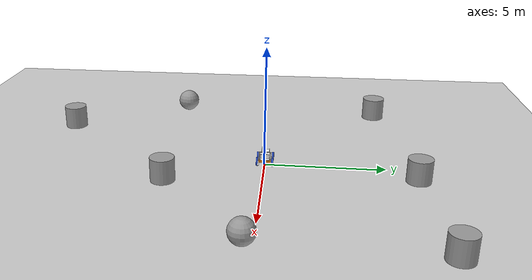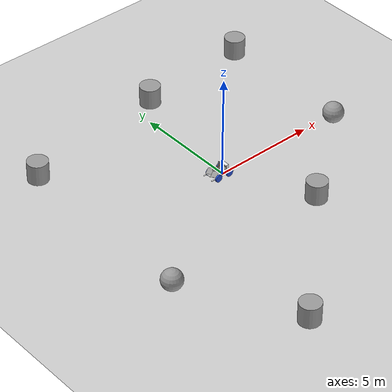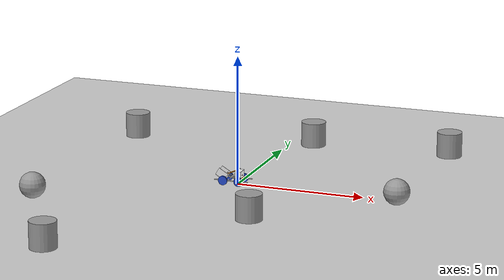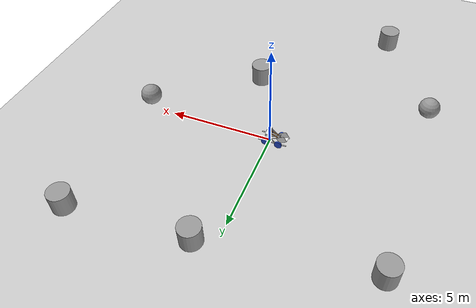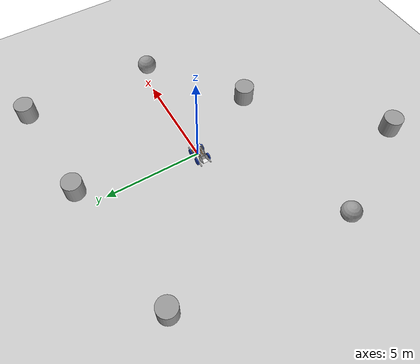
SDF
<sdf version="1.7">
 <world name="default">
  <light name="sun" type="directional">
   <pose>0 0 10 0 -0 0</pose>
   <diffuse>0.8 0.8 0.8 1</diffuse>
   <specular>0.2 0.2 0.2 1</specular>
   <attenuation>
    <range>1000</range>
    <constant>0.9</constant>
    <linear>0.01</linear>
    <quadratic>0.001</quadratic>
   </attenuation>
   <direction>-0.5 0.1 -0.9</direction>
   <spot><inner_angle>0</inner_angle><outer_angle>0</outer_angle><falloff>0</falloff></spot>
  </light>
  <model name="ground_plane">
   <static>1</static>
   <link name="link">
    <collision name="collision">
     <geometry><plane><normal>0 0 1</normal><size>100 100</size></plane></geometry>
     <surface><friction><ode><mu>100</mu><mu2>50</mu2></ode></friction></surface>
    </collision>
    <visual name="visual">
     <cast_shadows>0</cast_shadows>
     <geometry><plane><normal>0 0 1</normal><size>100 100</size></plane></geometry>
     <material>
      <script><uri>file://media/materials/scripts/gazebo.material</uri><name>Gazebo/Grey</name></script>
     </material>
    </visual>
   </link>
  </model>
  <gravity>0 0 -9.8</gravity>
  <magnetic_field>6e-06 2.3e-05 -4.2e-05</magnetic_field>
  <atmosphere type="adiabatic"/>
  <physics type="ode">
   <max_step_size>0.001</max_step_size>
   <real_time_factor>1</real_time_factor>
   <real_time_update_rate>1000</real_time_update_rate>
  </physics>
  <scene><ambient>0.4 0.4 0.4 1</ambient><background>0.7 0.7 0.7 1</background><shadows>1</shadows></scene>
  <audio><device>default</device></audio>
  <spherical_coordinates>
   <surface_model>EARTH_WGS84</surface_model>
   <latitude_deg>0</latitude_deg>
   <longitude_deg>0</longitude_deg>
   <elevation>0</elevation>
   <heading_deg>0</heading_deg>
  </spherical_coordinates>
  <model name="my_bot">
   <link name="base_link">
    <inertial>
     <pose>-0.101859 -0 0.097346 0 -0 0</pose>
     <mass>691.326</mass>
     <inertia>
      <ixx>36.6422</ixx>
      <ixy>3.61875e-16</ixy>
      <ixz>7.87327</ixz>
      <iyy>202.022</iyy>
      <iyz>-2.34819e-16</iyz>
      <izz>218.628</izz>
     </inertia>
    </inertial>
    <collision name="base_link_fixed_joint_lump__doser_back_collision">
     <pose>-0.4205 0 0.095 0 0.540722 0</pose>
     <geometry><box><size>0.005 0.3225 0.312</size></box></geometry>
    </collision>
    <collision name="base_link_fixed_joint_lump__doser_base_collision_1">
     <pose>-0.675 0 0.066 0 0.540722 0</pose>
     <geometry><box><size>0.4153 0.3225 0.005</size></box></geometry>
    </collision>
    <collision name="base_link_fixed_joint_lump__doser_left_collision_2">
     <pose>-0.597 -0.158753 0.2 0 0.540722 0</pose>
     <geometry><box><size>0.4153 0.005 0.307</size></box></geometry>
    </collision>
    <collision name="base_link_fixed_joint_lump__doser_right_collision_3">
     <pose>-0.597 0.158753 0.2 0 0.540722 0</pose>
     <geometry><box><size>0.4153 0.005 0.307</size></box></geometry>
    </collision>
    <collision name="base_link_fixed_joint_lump__actuator_left_collision_4">
     <pose>-0.205 -0.076025 0.285 0 -0.418879 0</pose>
     <geometry><box><size>0.4575 0.02 0.02</size></box></geometry>
    </collision>
    <collision name="base_link_fixed_joint_lump__actuator_right_collision_5">
     <pose>-0.205 0.076025 0.285 0 -0.418879 0</pose>
     <geometry><box><size>0.4575 0.02 0.02</size></box></geometry>
    </collision>
    <collision name="base_link_fixed_joint_lump__back_left_wheel_collision_6">
     <pose>-0.49 -0.3182 0 -1.5708 0 0</pose>
     <geometry><sphere><radius>0.1778</radius></sphere></geometry>
     <surface><friction><ode><mu>0.001</mu><mu2>0.001</mu2></ode></friction></surface>
    </collision>
    <collision name="base_link_fixed_joint_lump__back_right_wheel_collision_7">
     <pose>-0.49 0.3182 0 1.5708 -0 0</pose>
     <geometry><sphere><radius>0.1778</radius></sphere></geometry>
     <surface><friction><ode><mu>0.001</mu><mu2>0.001</mu2></ode></friction></surface>
    </collision>
    <collision name="base_link_fixed_joint_lump__chassis_base_left_collision_8">
     <pose>-0.17965 -0.2604 0 0 -0 0</pose>
     <geometry><box><size>1.3501 0.0508 0.0254</size></box></geometry>
    </collision>
    <collision name="base_link_fixed_joint_lump__chassis_base_right_collision_9">
     <pose>-0.17965 0.2604 0 0 -0 0</pose>
     <geometry><box><size>1.3501 0.0508 0.0254</size></box></geometry>
    </collision>
    <collision name="base_link_fixed_joint_lump__doser_profile_left_collision_10">
     <pose>-0.2286 -0.076025 0.1 0 0.418879 0</pose>
     <geometry><box><size>0.49 0.0254 0.0254</size></box></geometry>
    </collision>
    <collision name="base_link_fixed_joint_lump__doser_profile_right_collision_11">
     <pose>-0.2286 0.076025 0.1 0 0.418879 0</pose>
     <geometry><box><size>0.49 0.0254 0.0254</size></box></geometry>
    </collision>
    <collision name="base_link_fixed_joint_lump__doser_profile_top_collision_12">
     <pose>-0.4596 0 0.20245 0 0.418879 0</pose>
     <geometry><box><size>0.0254 0.3075 0.0254</size></box></geometry>
    </collision>
    <collision name="base_link_fixed_joint_lump__elec_back_collision_13">
     <pose>0.0135 0 0.23095 0 -0 0</pose>
     <geometry><box><size>0.009 0.3988 0.28</size></box></geometry>
    </collision>
    <collision name="base_link_fixed_joint_lump__elec_base_collision_14">
     <pose>0.10045 0 0.1 0 -0 0</pose>
     <geometry><box><size>0.1829 0.3988 0.019</size></box></geometry>
    </collision>
    <collision name="base_link_fixed_joint_lump__elec_left_collision_15">
     <pose>0.10045 -0.1995 0.23095 0 -0 0</pose>
     <geometry><box><size>0.1829 0.009 0.28</size></box></geometry>
    </collision>
    <collision name="base_link_fixed_joint_lump__elec_right_collision_16">
     <pose>0.10045 0.1995 0.23095 0 -0 0</pose>
     <geometry><box><size>0.1829 0.009 0.28</size></box></geometry>
    </collision>
    <collision name="base_link_fixed_joint_lump__elec_top_collision_17">
     <pose>0.10045 0 0.3616 0 -0 0</pose>
     <geometry><box><size>0.1829 0.3988 0.019</size></box></geometry>
    </collision>
    <collision name="base_link_fixed_joint_lump__laser_frame_collision_18">
     <pose>0 0 0.5334 0 -0 0</pose>
     <geometry><cylinder><length>0.04</length><radius>0.05</radius></cylinder></geometry>
    </collision>
    <collision name="base_link_fixed_joint_lump__motor_base_back_collision_19">
     <pose>0.175 0 0 0 -0 0</pose>
     <geometry><box><size>0.0254 0.4702 0.0254</size></box></geometry>
    </collision>
    <collision name="base_link_fixed_joint_lump__motor_base_front_collision_20">
     <pose>0.1 0 0 0 -0 0</pose>
     <geometry><box><size>0.0254 0.4702 0.0254</size></box></geometry>
    </collision>
    <collision name="base_link_fixed_joint_lump__motor_collision_21">
     <pose>0.145 0 0.0375 0 -0 0</pose>
     <geometry><box><size>0.15 0.5 0.075</size></box></geometry>
    </collision>
    <collision name="base_link_fixed_joint_lump__tower_base_collision_22">
     <geometry><box><size>0.0254 0.4702 0.0254</size></box></geometry>
    </collision>
    <collision name="base_link_fixed_joint_lump__tower_middle_collision_23">
     <pose>0 0 0.08 0 -0 0</pose>
     <geometry><box><size>0.0254 0.4702 0.0254</size></box></geometry>
    </collision>
    <collision name="base_link_fixed_joint_lump__tower_support_left_collision_24">
     <pose>-0.15635 -0.2478 0.16 0 -0.785398 0</pose>
     <geometry><box><size>0.4572 0.0254 0.0254</size></box></geometry>
    </collision>
    <collision name="base_link_fixed_joint_lump__tower_support_right_collision_25">
     <pose>-0.15635 0.2478 0.16 0 -0.785398 0</pose>
     <geometry><box><size>0.4572 0.0254 0.0254</size></box></geometry>
    </collision>
    <collision name="base_link_fixed_joint_lump__tower_top_collision_26">
     <pose>0 0 0.3626 0 -0 0</pose>
     <geometry><box><size>0.0254 0.4702 0.0508</size></box></geometry>
    </collision>
    <collision name="base_link_fixed_joint_lump__tower_up_left_collision_27">
     <pose>0 -0.2478 0.194 0 -0 0</pose>
     <geometry><box><size>0.0254 0.0254 0.388</size></box></geometry>
    </collision>
    <collision name="base_link_fixed_joint_lump__tower_up_right_collision_28">
     <pose>0 0.2478 0.194 0 -0 0</pose>
     <geometry><box><size>0.0254 0.0254 0.388</size></box></geometry>
    </collision>
    <visual name="base_link_fixed_joint_lump__doser_back_visual">
     <pose>-0.4205 0 0.095 0 0.540722 0</pose>
     <geometry><box><size>0.005 0.3225 0.312</size></box></geometry>
     <material>
      <script><name>Gazebo/White</name><uri>file://media/materials/scripts/gazebo.material</uri></script>
     </material>
    </visual>
    <visual name="base_link_fixed_joint_lump__doser_base_visual_1">
     <pose>-0.675 0 0.066 0 0.540722 0</pose>
     <geometry><box><size>0.4153 0.3225 0.005</size></box></geometry>
     <material>
      <script><name>Gazebo/White</name><uri>file://media/materials/scripts/gazebo.material</uri></script>
     </material>
    </visual>
    <visual name="base_link_fixed_joint_lump__doser_left_visual_2">
     <pose>-0.597 -0.158753 0.2 0 0.540722 0</pose>
     <geometry><box><size>0.4153 0.005 0.307</size></box></geometry>
     <material>
      <script><name>Gazebo/White</name><uri>file://media/materials/scripts/gazebo.material</uri></script>
     </material>
    </visual>
    <visual name="base_link_fixed_joint_lump__doser_right_visual_3">
     <pose>-0.597 0.158753 0.2 0 0.540722 0</pose>
     <geometry><box><size>0.4153 0.005 0.307</size></box></geometry>
     <material>
      <script><name>Gazebo/White</name><uri>file://media/materials/scripts/gazebo.material</uri></script>
     </material>
    </visual>
    <visual name="base_link_fixed_joint_lump__actuator_left_visual_4">
     <pose>-0.205 -0.076025 0.285 0 -0.418879 0</pose>
     <geometry><box><size>0.4575 0.02 0.02</size></box></geometry>
     <material>
      <script><name>Gazebo/Orange</name><uri>file://media/materials/scripts/gazebo.material</uri></script>
     </material>
    </visual>
    <visual name="base_link_fixed_joint_lump__actuator_right_visual_5">
     <pose>-0.205 0.076025 0.285 0 -0.418879 0</pose>
     <geometry><box><size>0.4575 0.02 0.02</size></box></geometry>
     <material>
      <script><name>Gazebo/Orange</name><uri>file://media/materials/scripts/gazebo.material</uri></script>
     </material>
    </visual>
    <visual name="base_link_fixed_joint_lump__back_left_wheel_visual_6">
     <pose>-0.49 -0.3182 0 -1.5708 0 0</pose>
     <geometry><cylinder><length>0.07</length><radius>0.1778</radius></cylinder></geometry>
     <material>
      <script><name>Gazebo/Blue</name><uri>file://media/materials/scripts/gazebo.material</uri></script>
     </material>
    </visual>
    <visual name="base_link_fixed_joint_lump__back_right_wheel_visual_7">
     <pose>-0.49 0.3182 0 1.5708 -0 0</pose>
     <geometry><cylinder><length>0.07</length><radius>0.1778</radius></cylinder></geometry>
     <material>
      <script><name>Gazebo/Blue</name><uri>file://media/materials/scripts/gazebo.material</uri></script>
     </material>
    </visual>
    <visual name="base_link_fixed_joint_lump__camera_link_visual_8">
     <pose>0.1919 0 0.2016 0 -0 0</pose>
     <geometry><box><size>0.01 0.03 0.03</size></box></geometry>
     <material>
      <script><name>Gazebo/Red</name><uri>file://media/materials/scripts/gazebo.material</uri></script>
     </material>
    </visual>
    <visual name="base_link_fixed_joint_lump__chassis_base_left_visual_9">
     <pose>-0.17965 -0.2604 0 0 -0 0</pose>
     <geometry><box><size>1.3501 0.0508 0.0254</size></box></geometry>
     <material>
      <script><name>Gazebo/White</name><uri>file://media/materials/scripts/gazebo.material</uri></script>
     </material>
    </visual>
    <visual name="base_link_fixed_joint_lump__chassis_base_right_visual_10">
     <pose>-0.17965 0.2604 0 0 -0 0</pose>
     <geometry><box><size>1.3501 0.0508 0.0254</size></box></geometry>
     <material>
      <script><name>Gazebo/White</name><uri>file://media/materials/scripts/gazebo.material</uri></script>
     </material>
    </visual>
    <visual name="base_link_fixed_joint_lump__doser_profile_left_visual_11">
     <pose>-0.2286 -0.076025 0.1 0 0.418879 0</pose>
     <geometry><box><size>0.49 0.0254 0.0254</size></box></geometry>
     <material>
      <script><name>Gazebo/White</name><uri>file://media/materials/scripts/gazebo.material</uri></script>
     </material>
    </visual>
    <visual name="base_link_fixed_joint_lump__doser_profile_right_visual_12">
     <pose>-0.2286 0.076025 0.1 0 0.418879 0</pose>
     <geometry><box><size>0.49 0.0254 0.0254</size></box></geometry>
     <material>
      <script><name>Gazebo/White</name><uri>file://media/materials/scripts/gazebo.material</uri></script>
     </material>
    </visual>
    <visual name="base_link_fixed_joint_lump__doser_profile_top_visual_13">
     <pose>-0.4596 0 0.20245 0 0.418879 0</pose>
     <geometry><box><size>0.0254 0.3075 0.0254</size></box></geometry>
     <material>
      <script><name>Gazebo/White</name><uri>file://media/materials/scripts/gazebo.material</uri></script>
     </material>
    </visual>
    <visual name="base_link_fixed_joint_lump__elec_back_visual_14">
     <pose>0.0135 0 0.23095 0 -0 0</pose>
     <geometry><box><size>0.009 0.3988 0.28</size></box></geometry>
     <material>
      <script><name>Gazebo/White</name><uri>file://media/materials/scripts/gazebo.material</uri></script>
     </material>
    </visual>
    <visual name="base_link_fixed_joint_lump__elec_base_visual_15">
     <pose>0.10045 0 0.1 0 -0 0</pose>
     <geometry><box><size>0.1829 0.3988 0.019</size></box></geometry>
     <material>
      <script><name>Gazebo/White</name><uri>file://media/materials/scripts/gazebo.material</uri></script>
     </material>
    </visual>
    <visual name="base_link_fixed_joint_lump__elec_left_visual_16">
     <pose>0.10045 -0.1995 0.23095 0 -0 0</pose>
     <geometry><box><size>0.1829 0.009 0.28</size></box></geometry>
     <material>
      <script><name>Gazebo/White</name><uri>file://media/materials/scripts/gazebo.material</uri></script>
     </material>
    </visual>
    <visual name="base_link_fixed_joint_lump__elec_right_visual_17">
     <pose>0.10045 0.1995 0.23095 0 -0 0</pose>
     <geometry><box><size>0.1829 0.009 0.28</size></box></geometry>
     <material>
      <script><name>Gazebo/White</name><uri>file://media/materials/scripts/gazebo.material</uri></script>
     </material>
    </visual>
    <visual name="base_link_fixed_joint_lump__elec_top_visual_18">
     <pose>0.10045 0 0.3616 0 -0 0</pose>
     <geometry><box><size>0.1829 0.3988 0.019</size></box></geometry>
     <material>
      <script><name>Gazebo/White</name><uri>file://media/materials/scripts/gazebo.material</uri></script>
     </material>
    </visual>
    <visual name="base_link_fixed_joint_lump__laser_frame_visual_19">
     <pose>0 0 0.5334 0 -0 0</pose>
     <geometry><cylinder><length>0.04</length><radius>0.05</radius></cylinder></geometry>
     <material>
      <script><name>Gazebo/Red</name><uri>file://media/materials/scripts/gazebo.material</uri></script>
     </material>
    </visual>
    <visual name="base_link_fixed_joint_lump__motor_base_back_visual_20">
     <pose>0.175 0 0 0 -0 0</pose>
     <geometry><box><size>0.0254 0.4702 0.0254</size></box></geometry>
     <material>
      <script><name>Gazebo/White</name><uri>file://media/materials/scripts/gazebo.material</uri></script>
     </material>
    </visual>
    <visual name="base_link_fixed_joint_lump__motor_base_front_visual_21">
     <pose>0.1 0 0 0 -0 0</pose>
     <geometry><box><size>0.0254 0.4702 0.0254</size></box></geometry>
     <material>
      <script><name>Gazebo/White</name><uri>file://media/materials/scripts/gazebo.material</uri></script>
     </material>
    </visual>
    <visual name="base_link_fixed_joint_lump__motor_visual_22">
     <pose>0.145 0 0.0375 0 -0 0</pose>
     <geometry><box><size>0.15 0.5 0.075</size></box></geometry>
     <material>
      <script><name>Gazebo/Orange</name><uri>file://media/materials/scripts/gazebo.material</uri></script>
     </material>
    </visual>
    <visual name="base_link_fixed_joint_lump__tower_base_visual_23">
     <geometry><box><size>0.0254 0.4702 0.0254</size></box></geometry>
     <material>
      <script><name>Gazebo/White</name><uri>file://media/materials/scripts/gazebo.material</uri></script>
     </material>
    </visual>
    <visual name="base_link_fixed_joint_lump__tower_middle_visual_24">
     <pose>0 0 0.08 0 -0 0</pose>
     <geometry><box><size>0.0254 0.4702 0.0254</size></box></geometry>
     <material>
      <script><name>Gazebo/White</name><uri>file://media/materials/scripts/gazebo.material</uri></script>
     </material>
    </visual>
    <visual name="base_link_fixed_joint_lump__tower_support_left_visual_25">
     <pose>-0.15635 -0.2478 0.16 0 -0.785398 0</pose>
     <geometry><box><size>0.4572 0.0254 0.0254</size></box></geometry>
     <material>
      <script><name>Gazebo/White</name><uri>file://media/materials/scripts/gazebo.material</uri></script>
     </material>
    </visual>
    <visual name="base_link_fixed_joint_lump__tower_support_right_visual_26">
     <pose>-0.15635 0.2478 0.16 0 -0.785398 0</pose>
     <geometry><box><size>0.4572 0.0254 0.0254</size></box></geometry>
     <material>
      <script><name>Gazebo/White</name><uri>file://media/materials/scripts/gazebo.material</uri></script>
     </material>
    </visual>
    <visual name="base_link_fixed_joint_lump__tower_top_visual_27">
     <pose>0 0 0.3626 0 -0 0</pose>
     <geometry><box><size>0.0254 0.4702 0.0508</size></box></geometry>
    </visual>
    <visual name="base_link_fixed_joint_lump__tower_up_left_visual_28">
     <pose>0 -0.2478 0.194 0 -0 0</pose>
     <geometry><box><size>0.0254 0.0254 0.388</size></box></geometry>
     <material>
      <script><name>Gazebo/White</name><uri>file://media/materials/scripts/gazebo.material</uri></script>
     </material>
    </visual>
    <visual name="base_link_fixed_joint_lump__tower_up_right_visual_29">
     <pose>0 0.2478 0.194 0 -0 0</pose>
     <geometry><box><size>0.0254 0.0254 0.388</size></box></geometry>
     <material>
      <script><name>Gazebo/White</name><uri>file://media/materials/scripts/gazebo.material</uri></script>
     </material>
    </visual>
    <sensor name="depth_camera" type="depth">
     <visualize>1</visualize>
     <update_rate>10</update_rate>
     <camera>
      <horizontal_fov>1.089</horizontal_fov>
      <image><format>B8G8R8</format><width>640</width><height>480</height></image>
      <clip><near>0.05</near><far>8</far></clip>
     </camera>
     <plugin name="camera_controller" filename="libgazebo_ros_camera.so">
      <frame_name>camera_link_optical</frame_name>
      <min_depth>0.1</min_depth>
      <max_depth>100</max_depth>
     </plugin>
     <pose>0.1919 0 0.2016 0 -0 0</pose>
    </sensor>
    <sensor name="imu_sensor" type="imu">
     <always_on>1</always_on>
     <update_rate>100</update_rate>
     <visualize>1</visualize>
     <plugin name="imu_plugin" filename="libgazebo_ros_imu_sensor.so">
      <ros><remapping>~/out:=imu/data_raw</remapping></ros>
      <topicName>imu</topicName>
      <bodyName>imu_link</bodyName>
      <update_rate>100</update_rate>
      <frameName>imu_link</frameName>
      <initialOrientationAsReference>0</initialOrientationAsReference>
     </plugin>
    </sensor>
    <sensor name="laser" type="ray">
     <visualize>1</visualize>
     <update_rate>10</update_rate>
     <ray>
      <scan>
       <horizontal>
        <samples>360</samples>
        <min_angle>-3.14</min_angle>
        <max_angle>3.14</max_angle>
        <resolution>1</resolution>
       </horizontal>
       <vertical><samples>1</samples><min_angle>0</min_angle><max_angle>0</max_angle></vertical>
      </scan>
      <range><min>0.3</min><max>12</max></range>
     </ray>
     <plugin name="laser_controller" filename="libgazebo_ros_ray_sensor.so">
      <ros><argument>~/out:=scan</argument></ros>
      <output_type>sensor_msgs/LaserScan</output_type>
      <frame_name>laser_frame</frame_name>
     </plugin>
     <pose>0 0 0.5334 0 -0 0</pose>
    </sensor>
   </link>
   <joint name="left_wheel_joint" type="revolute">
    <pose relative_to="base_link">0.14 0.3182 0 -1.5708 0 0</pose>
    <parent>base_link</parent>
    <child>left_wheel</child>
    <axis>
     <xyz>0 0 1</xyz>
     <limit><lower>-1e+16</lower><upper>1e+16</upper></limit>
     <dynamics><spring_reference>0</spring_reference><spring_stiffness>0</spring_stiffness></dynamics>
    </axis>
   </joint>
   <link name="left_wheel">
    <pose relative_to="left_wheel_joint">0 0 0 0 -0 0</pose>
    <inertial>
     <mass>56</mass>
     <inertia>
      <ixx>0.465446</ixx>
      <ixy>0</ixy>
      <ixz>0</ixz>
      <iyy>0.465446</iyy>
      <iyz>0</iyz>
      <izz>0.88516</izz>
     </inertia>
    </inertial>
    <collision name="left_wheel_collision">
     <geometry><sphere><radius>0.1778</radius></sphere></geometry>
    </collision>
    <visual name="left_wheel_visual">
     <geometry><cylinder><length>0.07</length><radius>0.1778</radius></cylinder></geometry>
     <material>
      <script><name>Gazebo/Blue</name><uri>file://media/materials/scripts/gazebo.material</uri></script>
     </material>
    </visual>
   </link>
   <joint name="right_wheel_joint" type="revolute">
    <pose relative_to="base_link">0.14 -0.3182 0 1.5708 -0 0</pose>
    <parent>base_link</parent>
    <child>right_wheel</child>
    <axis>
     <xyz>0 0 -1</xyz>
     <limit><lower>-1e+16</lower><upper>1e+16</upper></limit>
     <dynamics><spring_reference>0</spring_reference><spring_stiffness>0</spring_stiffness></dynamics>
    </axis>
   </joint>
   <link name="right_wheel">
    <pose relative_to="right_wheel_joint">0 0 0 0 -0 0</pose>
    <inertial>
     <mass>56</mass>
     <inertia>
      <ixx>0.465446</ixx>
      <ixy>0</ixy>
      <ixz>0</ixz>
      <iyy>0.465446</iyy>
      <iyz>0</iyz>
      <izz>0.88516</izz>
     </inertia>
    </inertial>
    <collision name="right_wheel_collision">
     <geometry><sphere><radius>0.1778</radius></sphere></geometry>
    </collision>
    <visual name="right_wheel_visual">
     <geometry><cylinder><length>0.07</length><radius>0.1778</radius></cylinder></geometry>
     <material>
      <script><name>Gazebo/Blue</name><uri>file://media/materials/scripts/gazebo.material</uri></script>
     </material>
    </visual>
   </link>
   <static>0</static>
   <plugin name="gazebo_ros2_control" filename="libgazebo_ros2_control.so">
    <parameters>/home/luna/backup_ws/install/ros_phoenix/share/ros_phoenix/config/diffbot_controllers.yaml</parameters>
    <parameters>/home/luna/backup_ws/install/ros_phoenix/share/ros_phoenix/config/gaz_ros2_ctl_use_sim.yaml</parameters>
   </plugin>
   <pose>-0.015732 0.003921 0.177797 -8e-06 0 0.001263</pose>
  </model>
  <model name="unit_cylinder">
   <pose>-6.37258 5.01304 0.499998 3e-06 -4e-06 0</pose>
   <link name="link">
    <inertial>
     <mass>1</mass>
     <inertia><ixx>0.145833</ixx><ixy>0</ixy><ixz>0</ixz><iyy>0.145833</iyy><iyz>0</iyz><izz>0.125</izz></inertia>
    </inertial>
    <collision name="collision">
     <geometry><cylinder><radius>0.5</radius><length>1</length></cylinder></geometry>
    </collision>
    <visual name="visual">
     <geometry><cylinder><radius>0.5</radius><length>1</length></cylinder></geometry>
     <material>
      <script><name>Gazebo/Grey</name><uri>file://media/materials/scripts/gazebo.material</uri></script>
     </material>
    </visual>
   </link>
  </model>
  <model name="unit_sphere">
   <pose>-6.59319 -4.31302 0.5 0 -0 0</pose>
   <link name="link">
    <inertial>
     <mass>1</mass>
     <inertia><ixx>0.1</ixx><ixy>0</ixy><ixz>0</ixz><iyy>0.1</iyy><iyz>0</iyz><izz>0.1</izz></inertia>
    </inertial>
    <collision name="collision"><geometry><sphere><radius>0.5</radius></sphere></geometry></collision>
    <visual name="visual">
     <geometry><sphere><radius>0.5</radius></sphere></geometry>
     <material>
      <script><name>Gazebo/Grey</name><uri>file://media/materials/scripts/gazebo.material</uri></script>
     </material>
    </visual>
   </link>
  </model>
  <model name="unit_cylinder_0">
   <pose>1.92291 -3.94915 0.499992 -3e-06 -4e-06 -0</pose>
   <link name="link">
    <inertial>
     <mass>1</mass>
     <inertia><ixx>0.145833</ixx><ixy>0</ixy><ixz>0</ixz><iyy>0.145833</iyy><iyz>0</iyz><izz>0.125</izz></inertia>
    </inertial>
    <collision name="collision">
     <geometry><cylinder><radius>0.5</radius><length>1</length></cylinder></geometry>
    </collision>
    <visual name="visual">
     <geometry><cylinder><radius>0.5</radius><length>1</length></cylinder></geometry>
     <material>
      <script><name>Gazebo/Grey</name><uri>file://media/materials/scripts/gazebo.material</uri></script>
     </material>
    </visual>
   </link>
  </model>
  <model name="unit_cylinder_1">
   <pose>0.975136 6.15817 0.499993 -3e-06 -3e-06 0</pose>
   <link name="link">
    <inertial>
     <mass>1</mass>
     <inertia><ixx>0.145833</ixx><ixy>0</ixy><ixz>0</ixz><iyy>0.145833</iyy><iyz>0</iyz><izz>0.125</izz></inertia>
    </inertial>
    <collision name="collision">
     <geometry><cylinder><radius>0.5</radius><length>1</length></cylinder></geometry>
    </collision>
    <visual name="visual">
     <geometry><cylinder><radius>0.5</radius><length>1</length></cylinder></geometry>
     <material>
      <script><name>Gazebo/Grey</name><uri>file://media/materials/scripts/gazebo.material</uri></script>
     </material>
    </visual>
   </link>
  </model>
  <model name="unit_sphere_0">
   <pose>6.42281 -0.373554 0.5 0 -0 0</pose>
   <link name="link">
    <inertial>
     <mass>1</mass>
     <inertia><ixx>0.1</ixx><ixy>0</ixy><ixz>0</ixz><iyy>0.1</iyy><iyz>0</iyz><izz>0.1</izz></inertia>
    </inertial>
    <collision name="collision"><geometry><sphere><radius>0.5</radius></sphere></geometry></collision>
    <visual name="visual">
     <geometry><sphere><radius>0.5</radius></sphere></geometry>
     <material>
      <script><name>Gazebo/Grey</name><uri>file://media/materials/scripts/gazebo.material</uri></script>
     </material>
    </visual>
   </link>
  </model>
  <model name="unit_cylinder_2">
   <pose>-3.65883 -9.34247 0.499993 -3e-06 -4e-06 -0</pose>
   <link name="link">
    <inertial>
     <mass>1</mass>
     <inertia><ixx>0.145833</ixx><ixy>0</ixy><ixz>0</ixz><iyy>0.145833</iyy><iyz>0</iyz><izz>0.125</izz></inertia>
    </inertial>
    <collision name="collision">
     <geometry><cylinder><radius>0.5</radius><length>1</length></cylinder></geometry>
    </collision>
    <visual name="visual">
     <geometry><cylinder><radius>0.5</radius><length>1</length></cylinder></geometry>
     <material>
      <script><name>Gazebo/Grey</name><uri>file://media/materials/scripts/gazebo.material</uri></script>
     </material>
    </visual>
   </link>
  </model>
  <model name="unit_cylinder_3">
   <pose>6.60087 6.5737 0.499997 3e-06 4e-06 -0</pose>
   <link name="link">
    <inertial>
     <mass>1</mass>
     <inertia><ixx>0.145833</ixx><ixy>0</ixy><ixz>0</ixz><iyy>0.145833</iyy><iyz>0</iyz><izz>0.125</izz></inertia>
    </inertial>
    <collision name="collision">
     <geometry><cylinder><radius>0.5</radius><length>1</length></cylinder></geometry>
    </collision>
    <visual name="visual">
     <geometry><cylinder><radius>0.5</radius><length>1</length></cylinder></geometry>
     <material>
      <script><name>Gazebo/Grey</name><uri>file://media/materials/scripts/gazebo.material</uri></script>
     </material>
    </visual>
   </link>
  </model>
 </world>
</sdf>
